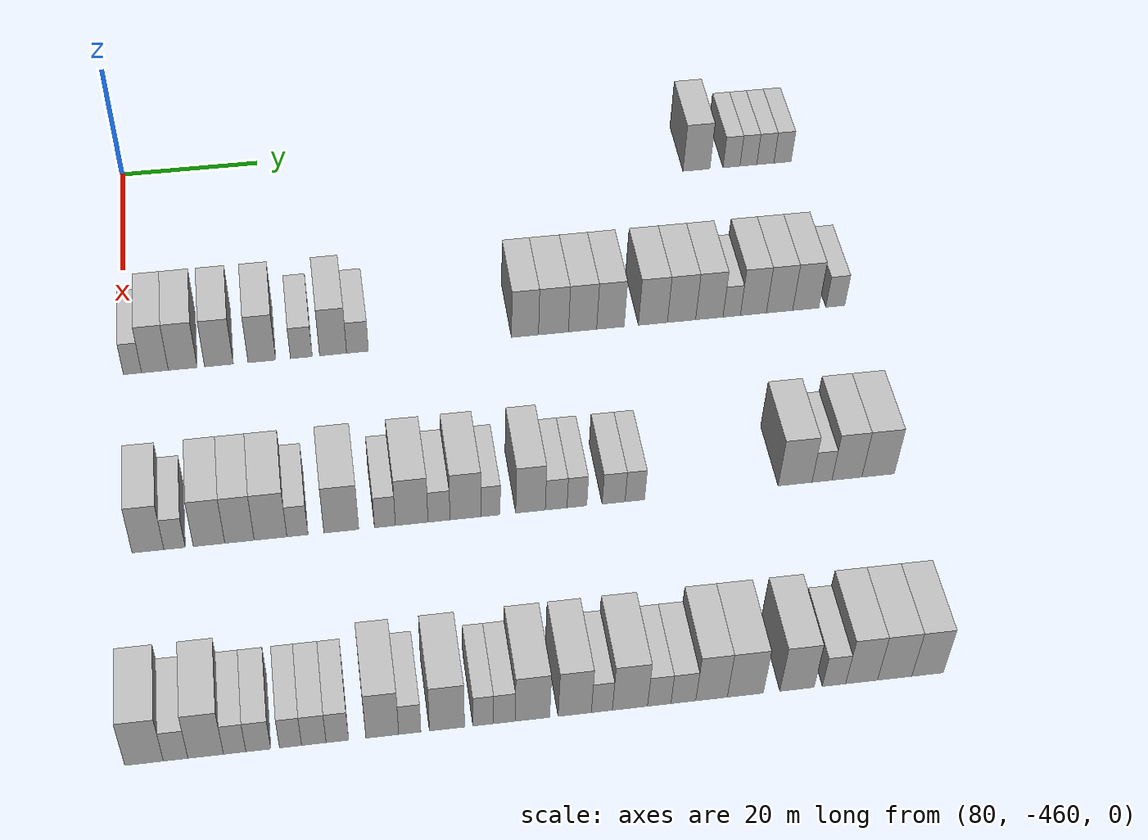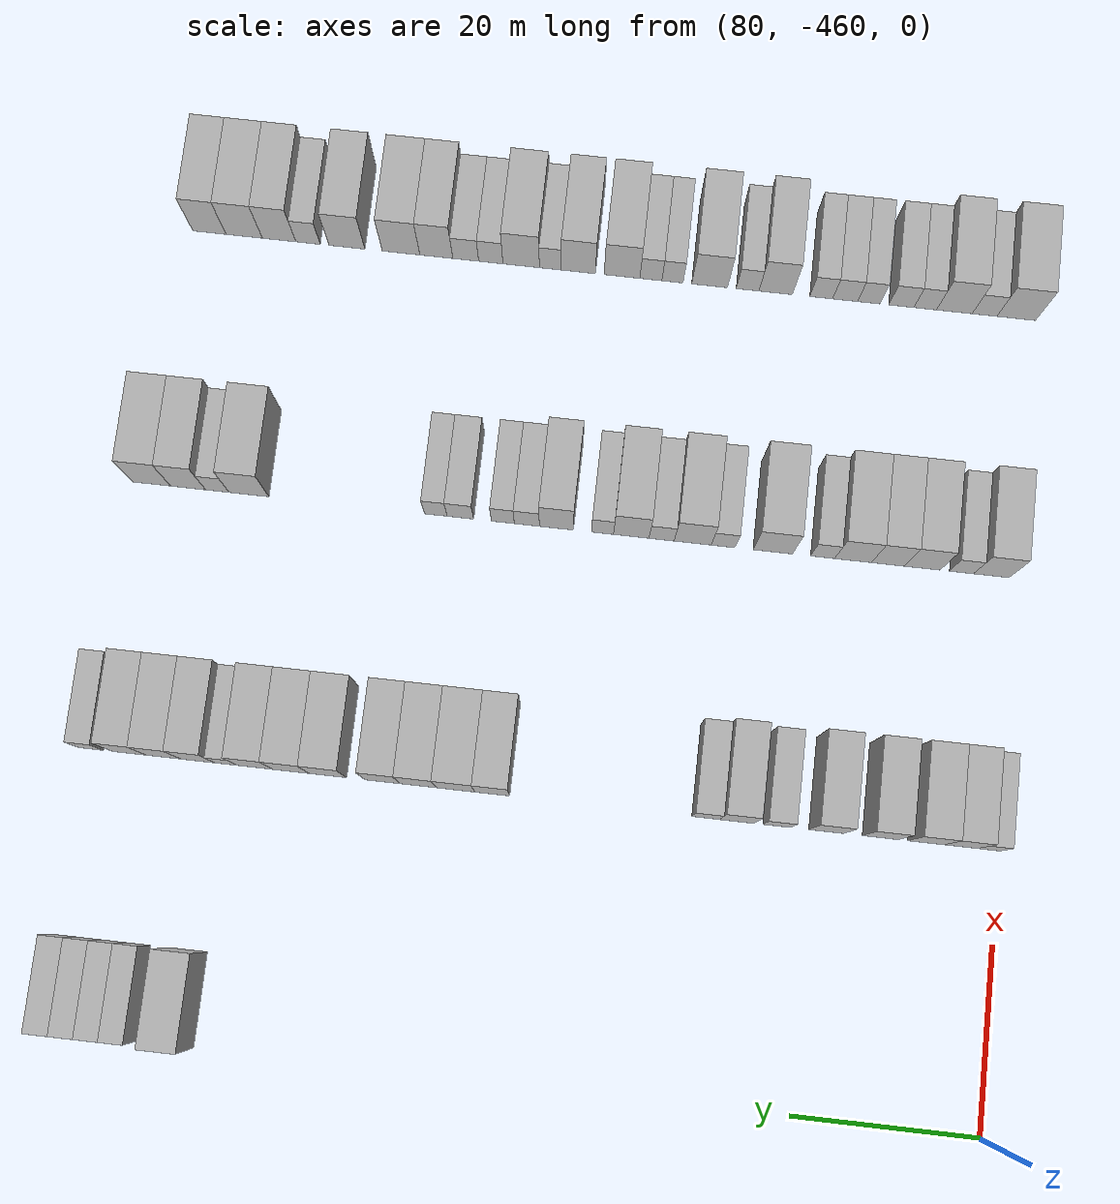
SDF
<sdf version="1.6">
 <world name="default">
  <model name="building_485">
   <static>1</static>
   <pose>85.0000 -374.9194 0 0.000000 0.000000 0.000000</pose>
   <link name="link">
    <pose>0 0 4.50 0 0 0</pose>
    <collision name="collision"><geometry><box><size>10.0000 4.1018 9.0000</size></box></geometry></collision>
    <visual name="visual">
     <cast_shadows>0</cast_shadows>
     <geometry><box><size>10.0000 4.1018 9.0000</size></box></geometry>
     <material>
      <script>
       <uri>model://HANNAS_wall/materials/scripts</uri>
       <uri>model://HANNAS_wall/materials/textures</uri>
       <name>vrc/HANNAS_wall</name>
      </script>
     </material>
    </visual>
   </link>
  </model>
  <model name="building_486">
   <static>1</static>
   <pose>85.0000 -369.5695 0 0.000000 0.000000 0.000000</pose>
   <link name="link">
    <pose>0 0 3.00 0 0 0</pose>
    <collision name="collision"><geometry><box><size>10.0000 2.5979 6.0000</size></box></geometry></collision>
    <visual name="visual">
     <cast_shadows>0</cast_shadows>
     <geometry><box><size>10.0000 2.5979 6.0000</size></box></geometry>
     <material>
      <script>
       <uri>model://HANNAS_wall/materials/scripts</uri>
       <uri>model://HANNAS_wall/materials/textures</uri>
       <name>vrc/HANNAS_wall</name>
      </script>
     </material>
    </visual>
   </link>
  </model>
  <model name="building_487">
   <static>1</static>
   <pose>85.0000 -366.9845 0 0.000000 0.000000 0.000000</pose>
   <link name="link">
    <pose>0 0 3.00 0 0 0</pose>
    <collision name="collision"><geometry><box><size>10.0000 2.5721 6.0000</size></box></geometry></collision>
    <visual name="visual">
     <cast_shadows>0</cast_shadows>
     <geometry><box><size>10.0000 2.5721 6.0000</size></box></geometry>
     <material>
      <script>
       <uri>model://HANNAS_wall/materials/scripts</uri>
       <uri>model://HANNAS_wall/materials/textures</uri>
       <name>vrc/HANNAS_wall</name>
      </script>
     </material>
    </visual>
   </link>
  </model>
  <model name="building_488">
   <static>1</static>
   <pose>85.0000 -364.3899 0 0.000000 0.000000 0.000000</pose>
   <link name="link">
    <pose>0 0 3.00 0 0 0</pose>
    <collision name="collision"><geometry><box><size>10.0000 2.6172 6.0000</size></box></geometry></collision>
    <visual name="visual">
     <cast_shadows>0</cast_shadows>
     <geometry><box><size>10.0000 2.6172 6.0000</size></box></geometry>
     <material>
      <script>
       <uri>model://HANNAS_wall/materials/scripts</uri>
       <uri>model://HANNAS_wall/materials/textures</uri>
       <name>vrc/HANNAS_wall</name>
      </script>
     </material>
    </visual>
   </link>
  </model>
  <model name="building_489">
   <static>1</static>
   <pose>85.0000 -361.7612 0 0.000000 0.000000 0.000000</pose>
   <link name="link">
    <pose>0 0 3.00 0 0 0</pose>
    <collision name="collision"><geometry><box><size>10.0000 2.6401 6.0000</size></box></geometry></collision>
    <visual name="visual">
     <cast_shadows>0</cast_shadows>
     <geometry><box><size>10.0000 2.6401 6.0000</size></box></geometry>
     <material>
      <script>
       <uri>model://HANNAS_wall/materials/scripts</uri>
       <uri>model://HANNAS_wall/materials/textures</uri>
       <name>vrc/HANNAS_wall</name>
      </script>
     </material>
    </visual>
   </link>
  </model>
  <model name="building_687">
   <static>1</static>
   <pose>115.0000 -458.7823 0 0.000000 0.000000 0.000000</pose>
   <link name="link">
    <pose>0 0 3.00 0 0 0</pose>
    <collision name="collision"><geometry><box><size>10.0000 2.4355 6.0000</size></box></geometry></collision>
    <visual name="visual">
     <cast_shadows>0</cast_shadows>
     <geometry><box><size>10.0000 2.4355 6.0000</size></box></geometry>
     <material>
      <script>
       <uri>model://HANNAS_wall/materials/scripts</uri>
       <uri>model://HANNAS_wall/materials/textures</uri>
       <name>vrc/HANNAS_wall</name>
      </script>
     </material>
    </visual>
   </link>
  </model>
  <model name="building_688">
   <static>1</static>
   <pose>115.0000 -455.7634 0 0.000000 0.000000 0.000000</pose>
   <link name="link">
    <pose>0 0 4.50 0 0 0</pose>
    <collision name="collision"><geometry><box><size>10.0000 3.6023 9.0000</size></box></geometry></collision>
    <visual name="visual">
     <cast_shadows>0</cast_shadows>
     <geometry><box><size>10.0000 3.6023 9.0000</size></box></geometry>
     <material>
      <script>
       <uri>model://HANNAS_wall/materials/scripts</uri>
       <uri>model://HANNAS_wall/materials/textures</uri>
       <name>vrc/HANNAS_wall</name>
      </script>
     </material>
    </visual>
   </link>
  </model>
  <model name="building_689">
   <static>1</static>
   <pose>115.0000 -452.0090 0 0.000000 0.000000 0.000000</pose>
   <link name="link">
    <pose>0 0 4.50 0 0 0</pose>
    <collision name="collision"><geometry><box><size>10.0000 3.9065 9.0000</size></box></geometry></collision>
    <visual name="visual">
     <cast_shadows>0</cast_shadows>
     <geometry><box><size>10.0000 3.9065 9.0000</size></box></geometry>
     <material>
      <script>
       <uri>model://HANNAS_wall/materials/scripts</uri>
       <uri>model://HANNAS_wall/materials/textures</uri>
       <name>vrc/HANNAS_wall</name>
      </script>
     </material>
    </visual>
   </link>
  </model>
  <model name="building_690">
   <static>1</static>
   <pose>115.0000 -447.1148 0 0.000000 0.000000 0.000000</pose>
   <link name="link">
    <pose>0 0 4.50 0 0 0</pose>
    <collision name="collision"><geometry><box><size>10.0000 3.8818 9.0000</size></box></geometry></collision>
    <visual name="visual">
     <cast_shadows>0</cast_shadows>
     <geometry><box><size>10.0000 3.8818 9.0000</size></box></geometry>
     <material>
      <script>
       <uri>model://HANNAS_wall/materials/scripts</uri>
       <uri>model://HANNAS_wall/materials/textures</uri>
       <name>vrc/HANNAS_wall</name>
      </script>
     </material>
    </visual>
   </link>
  </model>
  <model name="building_691">
   <static>1</static>
   <pose>115.0000 -441.2875 0 0.000000 0.000000 0.000000</pose>
   <link name="link">
    <pose>0 0 4.50 0 0 0</pose>
    <collision name="collision"><geometry><box><size>10.0000 3.7729 9.0000</size></box></geometry></collision>
    <visual name="visual">
     <cast_shadows>0</cast_shadows>
     <geometry><box><size>10.0000 3.7729 9.0000</size></box></geometry>
     <material>
      <script>
       <uri>model://HANNAS_wall/materials/scripts</uri>
       <uri>model://HANNAS_wall/materials/textures</uri>
       <name>vrc/HANNAS_wall</name>
      </script>
     </material>
    </visual>
   </link>
  </model>
  <model name="building_692">
   <static>1</static>
   <pose>115.0000 -435.9151 0 0.000000 0.000000 0.000000</pose>
   <link name="link">
    <pose>0 0 3.00 0 0 0</pose>
    <collision name="collision"><geometry><box><size>10.0000 2.9719 6.0000</size></box></geometry></collision>
    <visual name="visual">
     <cast_shadows>0</cast_shadows>
     <geometry><box><size>10.0000 2.9719 6.0000</size></box></geometry>
     <material>
      <script>
       <uri>model://HANNAS_wall/materials/scripts</uri>
       <uri>model://HANNAS_wall/materials/textures</uri>
       <name>vrc/HANNAS_wall</name>
      </script>
     </material>
    </visual>
   </link>
  </model>
  <model name="building_693">
   <static>1</static>
   <pose>115.0000 -431.5846 0 0.000000 0.000000 0.000000</pose>
   <link name="link">
    <pose>0 0 4.50 0 0 0</pose>
    <collision name="collision"><geometry><box><size>10.0000 3.6892 9.0000</size></box></geometry></collision>
    <visual name="visual">
     <cast_shadows>0</cast_shadows>
     <geometry><box><size>10.0000 3.6892 9.0000</size></box></geometry>
     <material>
      <script>
       <uri>model://HANNAS_wall/materials/scripts</uri>
       <uri>model://HANNAS_wall/materials/textures</uri>
       <name>vrc/HANNAS_wall</name>
      </script>
     </material>
    </visual>
   </link>
  </model>
  <model name="building_694">
   <static>1</static>
   <pose>115.0000 -428.2467 0 0.000000 0.000000 0.000000</pose>
   <link name="link">
    <pose>0 0 3.00 0 0 0</pose>
    <collision name="collision"><geometry><box><size>10.0000 2.9866 6.0000</size></box></geometry></collision>
    <visual name="visual">
     <cast_shadows>0</cast_shadows>
     <geometry><box><size>10.0000 2.9866 6.0000</size></box></geometry>
     <material>
      <script>
       <uri>model://HANNAS_wall/materials/scripts</uri>
       <uri>model://HANNAS_wall/materials/textures</uri>
       <name>vrc/HANNAS_wall</name>
      </script>
     </material>
    </visual>
   </link>
  </model>
  <model name="building_695">
   <static>1</static>
   <pose>115.0000 -405.1167 0 0.000000 0.000000 0.000000</pose>
   <link name="link">
    <pose>0 0 4.50 0 0 0</pose>
    <collision name="collision"><geometry><box><size>10.0000 3.7578 9.0000</size></box></geometry></collision>
    <visual name="visual">
     <cast_shadows>0</cast_shadows>
     <geometry><box><size>10.0000 3.7578 9.0000</size></box></geometry>
     <material>
      <script>
       <uri>model://HANNAS_wall/materials/scripts</uri>
       <uri>model://HANNAS_wall/materials/textures</uri>
       <name>vrc/HANNAS_wall</name>
      </script>
     </material>
    </visual>
   </link>
  </model>
  <model name="building_696">
   <static>1</static>
   <pose>115.0000 -401.1436 0 0.000000 0.000000 0.000000</pose>
   <link name="link">
    <pose>0 0 4.50 0 0 0</pose>
    <collision name="collision"><geometry><box><size>10.0000 4.1882 9.0000</size></box></geometry></collision>
    <visual name="visual">
     <cast_shadows>0</cast_shadows>
     <geometry><box><size>10.0000 4.1882 9.0000</size></box></geometry>
     <material>
      <script>
       <uri>model://HANNAS_wall/materials/scripts</uri>
       <uri>model://HANNAS_wall/materials/textures</uri>
       <name>vrc/HANNAS_wall</name>
      </script>
     </material>
    </visual>
   </link>
  </model>
  <model name="building_697">
   <static>1</static>
   <pose>115.0000 -397.0735 0 0.000000 0.000000 0.000000</pose>
   <link name="link">
    <pose>0 0 4.50 0 0 0</pose>
    <collision name="collision"><geometry><box><size>10.0000 3.9521 9.0000</size></box></geometry></collision>
    <visual name="visual">
     <cast_shadows>0</cast_shadows>
     <geometry><box><size>10.0000 3.9521 9.0000</size></box></geometry>
     <material>
      <script>
       <uri>model://HANNAS_wall/materials/scripts</uri>
       <uri>model://HANNAS_wall/materials/textures</uri>
       <name>vrc/HANNAS_wall</name>
      </script>
     </material>
    </visual>
   </link>
  </model>
  <model name="building_698">
   <static>1</static>
   <pose>115.0000 -393.1735 0 0.000000 0.000000 0.000000</pose>
   <link name="link">
    <pose>0 0 4.50 0 0 0</pose>
    <collision name="collision"><geometry><box><size>10.0000 3.8479 9.0000</size></box></geometry></collision>
    <visual name="visual">
     <cast_shadows>0</cast_shadows>
     <geometry><box><size>10.0000 3.8479 9.0000</size></box></geometry>
     <material>
      <script>
       <uri>model://HANNAS_wall/materials/scripts</uri>
       <uri>model://HANNAS_wall/materials/textures</uri>
       <name>vrc/HANNAS_wall</name>
      </script>
     </material>
    </visual>
   </link>
  </model>
  <model name="building_699">
   <static>1</static>
   <pose>115.0000 -387.2053 0 0.000000 0.000000 0.000000</pose>
   <link name="link">
    <pose>0 0 4.50 0 0 0</pose>
    <collision name="collision"><geometry><box><size>10.0000 4.0884 9.0000</size></box></geometry></collision>
    <visual name="visual">
     <cast_shadows>0</cast_shadows>
     <geometry><box><size>10.0000 4.0884 9.0000</size></box></geometry>
     <material>
      <script>
       <uri>model://HANNAS_wall/materials/scripts</uri>
       <uri>model://HANNAS_wall/materials/textures</uri>
       <name>vrc/HANNAS_wall</name>
      </script>
     </material>
    </visual>
   </link>
  </model>
  <model name="building_700">
   <static>1</static>
   <pose>115.0000 -383.1663 0 0.000000 0.000000 0.000000</pose>
   <link name="link">
    <pose>0 0 4.50 0 0 0</pose>
    <collision name="collision"><geometry><box><size>10.0000 3.9896 9.0000</size></box></geometry></collision>
    <visual name="visual">
     <cast_shadows>0</cast_shadows>
     <geometry><box><size>10.0000 3.9896 9.0000</size></box></geometry>
     <material>
      <script>
       <uri>model://HANNAS_wall/materials/scripts</uri>
       <uri>model://HANNAS_wall/materials/textures</uri>
       <name>vrc/HANNAS_wall</name>
      </script>
     </material>
    </visual>
   </link>
  </model>
  <model name="building_701">
   <static>1</static>
   <pose>115.0000 -379.2354 0 0.000000 0.000000 0.000000</pose>
   <link name="link">
    <pose>0 0 4.50 0 0 0</pose>
    <collision name="collision"><geometry><box><size>10.0000 3.8723 9.0000</size></box></geometry></collision>
    <visual name="visual">
     <cast_shadows>0</cast_shadows>
     <geometry><box><size>10.0000 3.8723 9.0000</size></box></geometry>
     <material>
      <script>
       <uri>model://HANNAS_wall/materials/scripts</uri>
       <uri>model://HANNAS_wall/materials/textures</uri>
       <name>vrc/HANNAS_wall</name>
      </script>
     </material>
    </visual>
   </link>
  </model>
  <model name="building_702">
   <static>1</static>
   <pose>115.0000 -376.0723 0 0.000000 0.000000 0.000000</pose>
   <link name="link">
    <pose>0 0 3.00 0 0 0</pose>
    <collision name="collision"><geometry><box><size>10.0000 2.4538 6.0000</size></box></geometry></collision>
    <visual name="visual">
     <cast_shadows>0</cast_shadows>
     <geometry><box><size>10.0000 2.4538 6.0000</size></box></geometry>
     <material>
      <script>
       <uri>model://HANNAS_wall/materials/scripts</uri>
       <uri>model://HANNAS_wall/materials/textures</uri>
       <name>vrc/HANNAS_wall</name>
      </script>
     </material>
    </visual>
   </link>
  </model>
  <model name="building_703">
   <static>1</static>
   <pose>115.0000 -372.9947 0 0.000000 0.000000 0.000000</pose>
   <link name="link">
    <pose>0 0 4.50 0 0 0</pose>
    <collision name="collision"><geometry><box><size>10.0000 3.7015 9.0000</size></box></geometry></collision>
    <visual name="visual">
     <cast_shadows>0</cast_shadows>
     <geometry><box><size>10.0000 3.7015 9.0000</size></box></geometry>
     <material>
      <script>
       <uri>model://HANNAS_wall/materials/scripts</uri>
       <uri>model://HANNAS_wall/materials/textures</uri>
       <name>vrc/HANNAS_wall</name>
      </script>
     </material>
    </visual>
   </link>
  </model>
  <model name="building_704">
   <static>1</static>
   <pose>115.0000 -369.2673 0 0.000000 0.000000 0.000000</pose>
   <link name="link">
    <pose>0 0 4.50 0 0 0</pose>
    <collision name="collision"><geometry><box><size>10.0000 3.7533 9.0000</size></box></geometry></collision>
    <visual name="visual">
     <cast_shadows>0</cast_shadows>
     <geometry><box><size>10.0000 3.7533 9.0000</size></box></geometry>
     <material>
      <script>
       <uri>model://HANNAS_wall/materials/scripts</uri>
       <uri>model://HANNAS_wall/materials/textures</uri>
       <name>vrc/HANNAS_wall</name>
      </script>
     </material>
    </visual>
   </link>
  </model>
  <model name="building_705">
   <static>1</static>
   <pose>115.0000 -365.5245 0 0.000000 0.000000 0.000000</pose>
   <link name="link">
    <pose>0 0 4.50 0 0 0</pose>
    <collision name="collision"><geometry><box><size>10.0000 3.7323 9.0000</size></box></geometry></collision>
    <visual name="visual">
     <cast_shadows>0</cast_shadows>
     <geometry><box><size>10.0000 3.7323 9.0000</size></box></geometry>
     <material>
      <script>
       <uri>model://HANNAS_wall/materials/scripts</uri>
       <uri>model://HANNAS_wall/materials/textures</uri>
       <name>vrc/HANNAS_wall</name>
      </script>
     </material>
    </visual>
   </link>
  </model>
  <model name="building_706">
   <static>1</static>
   <pose>115.0000 -361.3030 0 0.000000 0.000000 0.000000</pose>
   <link name="link">
    <pose>0 0 3.00 0 0 0</pose>
    <collision name="collision"><geometry><box><size>10.0000 2.7107 6.0000</size></box></geometry></collision>
    <visual name="visual">
     <cast_shadows>0</cast_shadows>
     <geometry><box><size>10.0000 2.7107 6.0000</size></box></geometry>
     <material>
      <script>
       <uri>model://HANNAS_wall/materials/scripts</uri>
       <uri>model://HANNAS_wall/materials/textures</uri>
       <name>vrc/HANNAS_wall</name>
      </script>
     </material>
    </visual>
   </link>
  </model>
  <model name="building_916">
   <static>1</static>
   <pose>145.0000 -457.0274 0 0.000000 0.000000 0.000000</pose>
   <link name="link">
    <pose>0 0 4.50 0 0 0</pose>
    <collision name="collision"><geometry><box><size>10.0000 3.9452 9.0000</size></box></geometry></collision>
    <visual name="visual">
     <cast_shadows>0</cast_shadows>
     <geometry><box><size>10.0000 3.9452 9.0000</size></box></geometry>
     <material>
      <script>
       <uri>model://HANNAS_wall/materials/scripts</uri>
       <uri>model://HANNAS_wall/materials/textures</uri>
       <name>vrc/HANNAS_wall</name>
      </script>
     </material>
    </visual>
   </link>
  </model>
  <model name="building_917">
   <static>1</static>
   <pose>145.0000 -453.7219 0 0.000000 0.000000 0.000000</pose>
   <link name="link">
    <pose>0 0 3.00 0 0 0</pose>
    <collision name="collision"><geometry><box><size>10.0000 2.6657 6.0000</size></box></geometry></collision>
    <visual name="visual">
     <cast_shadows>0</cast_shadows>
     <geometry><box><size>10.0000 2.6657 6.0000</size></box></geometry>
     <material>
      <script>
       <uri>model://HANNAS_wall/materials/scripts</uri>
       <uri>model://HANNAS_wall/materials/textures</uri>
       <name>vrc/HANNAS_wall</name>
      </script>
     </material>
    </visual>
   </link>
  </model>
  <model name="building_918">
   <static>1</static>
   <pose>145.0000 -449.4197 0 0.000000 0.000000 0.000000</pose>
   <link name="link">
    <pose>0 0 4.50 0 0 0</pose>
    <collision name="collision"><geometry><box><size>10.0000 3.9387 9.0000</size></box></geometry></collision>
    <visual name="visual">
     <cast_shadows>0</cast_shadows>
     <geometry><box><size>10.0000 3.9387 9.0000</size></box></geometry>
     <material>
      <script>
       <uri>model://HANNAS_wall/materials/scripts</uri>
       <uri>model://HANNAS_wall/materials/textures</uri>
       <name>vrc/HANNAS_wall</name>
      </script>
     </material>
    </visual>
   </link>
  </model>
  <model name="building_919">
   <static>1</static>
   <pose>145.0000 -445.6117 0 0.000000 0.000000 0.000000</pose>
   <link name="link">
    <pose>0 0 4.50 0 0 0</pose>
    <collision name="collision"><geometry><box><size>10.0000 3.6772 9.0000</size></box></geometry></collision>
    <visual name="visual">
     <cast_shadows>0</cast_shadows>
     <geometry><box><size>10.0000 3.6772 9.0000</size></box></geometry>
     <material>
      <script>
       <uri>model://HANNAS_wall/materials/scripts</uri>
       <uri>model://HANNAS_wall/materials/textures</uri>
       <name>vrc/HANNAS_wall</name>
      </script>
     </material>
    </visual>
   </link>
  </model>
  <model name="building_920">
   <static>1</static>
   <pose>145.0000 -441.7202 0 0.000000 0.000000 0.000000</pose>
   <link name="link">
    <pose>0 0 4.50 0 0 0</pose>
    <collision name="collision"><geometry><box><size>10.0000 4.1058 9.0000</size></box></geometry></collision>
    <visual name="visual">
     <cast_shadows>0</cast_shadows>
     <geometry><box><size>10.0000 4.1058 9.0000</size></box></geometry>
     <material>
      <script>
       <uri>model://HANNAS_wall/materials/scripts</uri>
       <uri>model://HANNAS_wall/materials/textures</uri>
       <name>vrc/HANNAS_wall</name>
      </script>
     </material>
    </visual>
   </link>
  </model>
  <model name="building_921">
   <static>1</static>
   <pose>145.0000 -438.3343 0 0.000000 0.000000 0.000000</pose>
   <link name="link">
    <pose>0 0 3.00 0 0 0</pose>
    <collision name="collision"><geometry><box><size>10.0000 2.6660 6.0000</size></box></geometry></collision>
    <visual name="visual">
     <cast_shadows>0</cast_shadows>
     <geometry><box><size>10.0000 2.6660 6.0000</size></box></geometry>
     <material>
      <script>
       <uri>model://HANNAS_wall/materials/scripts</uri>
       <uri>model://HANNAS_wall/materials/textures</uri>
       <name>vrc/HANNAS_wall</name>
      </script>
     </material>
    </visual>
   </link>
  </model>
  <model name="building_922">
   <static>1</static>
   <pose>145.0000 -432.8032 0 0.000000 0.000000 0.000000</pose>
   <link name="link">
    <pose>0 0 4.50 0 0 0</pose>
    <collision name="collision"><geometry><box><size>10.0000 4.3962 9.0000</size></box></geometry></collision>
    <visual name="visual">
     <cast_shadows>0</cast_shadows>
     <geometry><box><size>10.0000 4.3962 9.0000</size></box></geometry>
     <material>
      <script>
       <uri>model://HANNAS_wall/materials/scripts</uri>
       <uri>model://HANNAS_wall/materials/textures</uri>
       <name>vrc/HANNAS_wall</name>
      </script>
     </material>
    </visual>
   </link>
  </model>
  <model name="building_923">
   <static>1</static>
   <pose>145.0000 -427.2815 0 0.000000 0.000000 0.000000</pose>
   <link name="link">
    <pose>0 0 3.00 0 0 0</pose>
    <collision name="collision"><geometry><box><size>10.0000 2.6474 6.0000</size></box></geometry></collision>
    <visual name="visual">
     <cast_shadows>0</cast_shadows>
     <geometry><box><size>10.0000 2.6474 6.0000</size></box></geometry>
     <material>
      <script>
       <uri>model://HANNAS_wall/materials/scripts</uri>
       <uri>model://HANNAS_wall/materials/textures</uri>
       <name>vrc/HANNAS_wall</name>
      </script>
     </material>
    </visual>
   </link>
  </model>
  <model name="building_924">
   <static>1</static>
   <pose>145.0000 -423.8891 0 0.000000 0.000000 0.000000</pose>
   <link name="link">
    <pose>0 0 4.50 0 0 0</pose>
    <collision name="collision"><geometry><box><size>10.0000 4.1374 9.0000</size></box></geometry></collision>
    <visual name="visual">
     <cast_shadows>0</cast_shadows>
     <geometry><box><size>10.0000 4.1374 9.0000</size></box></geometry>
     <material>
      <script>
       <uri>model://HANNAS_wall/materials/scripts</uri>
       <uri>model://HANNAS_wall/materials/textures</uri>
       <name>vrc/HANNAS_wall</name>
      </script>
     </material>
    </visual>
   </link>
  </model>
  <model name="building_925">
   <static>1</static>
   <pose>145.0000 -420.4185 0 0.000000 0.000000 0.000000</pose>
   <link name="link">
    <pose>0 0 3.00 0 0 0</pose>
    <collision name="collision"><geometry><box><size>10.0000 2.8038 6.0000</size></box></geometry></collision>
    <visual name="visual">
     <cast_shadows>0</cast_shadows>
     <geometry><box><size>10.0000 2.8038 6.0000</size></box></geometry>
     <material>
      <script>
       <uri>model://HANNAS_wall/materials/scripts</uri>
       <uri>model://HANNAS_wall/materials/textures</uri>
       <name>vrc/HANNAS_wall</name>
      </script>
     </material>
    </visual>
   </link>
  </model>
  <model name="building_926">
   <static>1</static>
   <pose>145.0000 -417.0370 0 0.000000 0.000000 0.000000</pose>
   <link name="link">
    <pose>0 0 4.50 0 0 0</pose>
    <collision name="collision"><geometry><box><size>10.0000 3.9593 9.0000</size></box></geometry></collision>
    <visual name="visual">
     <cast_shadows>0</cast_shadows>
     <geometry><box><size>10.0000 3.9593 9.0000</size></box></geometry>
     <material>
      <script>
       <uri>model://HANNAS_wall/materials/scripts</uri>
       <uri>model://HANNAS_wall/materials/textures</uri>
       <name>vrc/HANNAS_wall</name>
      </script>
     </material>
    </visual>
   </link>
  </model>
  <model name="building_927">
   <static>1</static>
   <pose>145.0000 -413.8283 0 0.000000 0.000000 0.000000</pose>
   <link name="link">
    <pose>0 0 3.00 0 0 0</pose>
    <collision name="collision"><geometry><box><size>10.0000 2.4580 6.0000</size></box></geometry></collision>
    <visual name="visual">
     <cast_shadows>0</cast_shadows>
     <geometry><box><size>10.0000 2.4580 6.0000</size></box></geometry>
     <material>
      <script>
       <uri>model://HANNAS_wall/materials/scripts</uri>
       <uri>model://HANNAS_wall/materials/textures</uri>
       <name>vrc/HANNAS_wall</name>
      </script>
     </material>
    </visual>
   </link>
  </model>
  <model name="building_928">
   <static>1</static>
   <pose>145.0000 -408.7014 0 0.000000 0.000000 0.000000</pose>
   <link name="link">
    <pose>0 0 4.50 0 0 0</pose>
    <collision name="collision"><geometry><box><size>10.0000 3.7958 9.0000</size></box></geometry></collision>
    <visual name="visual">
     <cast_shadows>0</cast_shadows>
     <geometry><box><size>10.0000 3.7958 9.0000</size></box></geometry>
     <material>
      <script>
       <uri>model://HANNAS_wall/materials/scripts</uri>
       <uri>model://HANNAS_wall/materials/textures</uri>
       <name>vrc/HANNAS_wall</name>
      </script>
     </material>
    </visual>
   </link>
  </model>
  <model name="building_929">
   <static>1</static>
   <pose>145.0000 -405.4028 0 0.000000 0.000000 0.000000</pose>
   <link name="link">
    <pose>0 0 3.00 0 0 0</pose>
    <collision name="collision"><geometry><box><size>10.0000 2.8015 6.0000</size></box></geometry></collision>
    <visual name="visual">
     <cast_shadows>0</cast_shadows>
     <geometry><box><size>10.0000 2.8015 6.0000</size></box></geometry>
     <material>
      <script>
       <uri>model://HANNAS_wall/materials/scripts</uri>
       <uri>model://HANNAS_wall/materials/textures</uri>
       <name>vrc/HANNAS_wall</name>
      </script>
     </material>
    </visual>
   </link>
  </model>
  <model name="building_930">
   <static>1</static>
   <pose>145.0000 -402.7312 0 0.000000 0.000000 0.000000</pose>
   <link name="link">
    <pose>0 0 3.00 0 0 0</pose>
    <collision name="collision"><geometry><box><size>10.0000 2.5416 6.0000</size></box></geometry></collision>
    <visual name="visual">
     <cast_shadows>0</cast_shadows>
     <geometry><box><size>10.0000 2.5416 6.0000</size></box></geometry>
     <material>
      <script>
       <uri>model://HANNAS_wall/materials/scripts</uri>
       <uri>model://HANNAS_wall/materials/textures</uri>
       <name>vrc/HANNAS_wall</name>
      </script>
     </material>
    </visual>
   </link>
  </model>
  <model name="building_931">
   <static>1</static>
   <pose>145.0000 -397.9787 0 0.000000 0.000000 0.000000</pose>
   <link name="link">
    <pose>0 0 3.00 0 0 0</pose>
    <collision name="collision"><geometry><box><size>10.0000 2.9635 6.0000</size></box></geometry></collision>
    <visual name="visual">
     <cast_shadows>0</cast_shadows>
     <geometry><box><size>10.0000 2.9635 6.0000</size></box></geometry>
     <material>
      <script>
       <uri>model://HANNAS_wall/materials/scripts</uri>
       <uri>model://HANNAS_wall/materials/textures</uri>
       <name>vrc/HANNAS_wall</name>
      </script>
     </material>
    </visual>
   </link>
  </model>
  <model name="building_932">
   <static>1</static>
   <pose>145.0000 -395.2371 0 0.000000 0.000000 0.000000</pose>
   <link name="link">
    <pose>0 0 3.00 0 0 0</pose>
    <collision name="collision"><geometry><box><size>10.0000 2.5196 6.0000</size></box></geometry></collision>
    <visual name="visual">
     <cast_shadows>0</cast_shadows>
     <geometry><box><size>10.0000 2.5196 6.0000</size></box></geometry>
     <material>
      <script>
       <uri>model://HANNAS_wall/materials/scripts</uri>
       <uri>model://HANNAS_wall/materials/textures</uri>
       <name>vrc/HANNAS_wall</name>
      </script>
     </material>
    </visual>
   </link>
  </model>
  <model name="building_933">
   <static>1</static>
   <pose>145.0000 -374.2757 0 0.000000 0.000000 0.000000</pose>
   <link name="link">
    <pose>0 0 4.50 0 0 0</pose>
    <collision name="collision"><geometry><box><size>10.0000 4.4677 9.0000</size></box></geometry></collision>
    <visual name="visual">
     <cast_shadows>0</cast_shadows>
     <geometry><box><size>10.0000 4.4677 9.0000</size></box></geometry>
     <material>
      <script>
       <uri>model://HANNAS_wall/materials/scripts</uri>
       <uri>model://HANNAS_wall/materials/textures</uri>
       <name>vrc/HANNAS_wall</name>
      </script>
     </material>
    </visual>
   </link>
  </model>
  <model name="building_934">
   <static>1</static>
   <pose>145.0000 -370.7245 0 0.000000 0.000000 0.000000</pose>
   <link name="link">
    <pose>0 0 3.00 0 0 0</pose>
    <collision name="collision"><geometry><box><size>10.0000 2.6347 6.0000</size></box></geometry></collision>
    <visual name="visual">
     <cast_shadows>0</cast_shadows>
     <geometry><box><size>10.0000 2.6347 6.0000</size></box></geometry>
     <material>
      <script>
       <uri>model://HANNAS_wall/materials/scripts</uri>
       <uri>model://HANNAS_wall/materials/textures</uri>
       <name>vrc/HANNAS_wall</name>
      </script>
     </material>
    </visual>
   </link>
  </model>
  <model name="building_935">
   <static>1</static>
   <pose>145.0000 -367.4300 0 0.000000 0.000000 0.000000</pose>
   <link name="link">
    <pose>0 0 4.50 0 0 0</pose>
    <collision name="collision"><geometry><box><size>10.0000 3.9543 9.0000</size></box></geometry></collision>
    <visual name="visual">
     <cast_shadows>0</cast_shadows>
     <geometry><box><size>10.0000 3.9543 9.0000</size></box></geometry>
     <material>
      <script>
       <uri>model://HANNAS_wall/materials/scripts</uri>
       <uri>model://HANNAS_wall/materials/textures</uri>
       <name>vrc/HANNAS_wall</name>
      </script>
     </material>
    </visual>
   </link>
  </model>
  <model name="building_936">
   <static>1</static>
   <pose>145.0000 -363.3007 0 0.000000 0.000000 0.000000</pose>
   <link name="link">
    <pose>0 0 4.50 0 0 0</pose>
    <collision name="collision"><geometry><box><size>10.0000 4.3043 9.0000</size></box></geometry></collision>
    <visual name="visual">
     <cast_shadows>0</cast_shadows>
     <geometry><box><size>10.0000 4.3043 9.0000</size></box></geometry>
     <material>
      <script>
       <uri>model://HANNAS_wall/materials/scripts</uri>
       <uri>model://HANNAS_wall/materials/textures</uri>
       <name>vrc/HANNAS_wall</name>
      </script>
     </material>
    </visual>
   </link>
  </model>
  <model name="building_1136">
   <static>1</static>
   <pose>175.0000 -457.8012 0 0.000000 0.000000 0.000000</pose>
   <link name="link">
    <pose>0 0 4.50 0 0 0</pose>
    <collision name="collision"><geometry><box><size>10.0000 4.3976 9.0000</size></box></geometry></collision>
    <visual name="visual">
     <cast_shadows>0</cast_shadows>
     <geometry><box><size>10.0000 4.3976 9.0000</size></box></geometry>
     <material>
      <script>
       <uri>model://HANNAS_wall/materials/scripts</uri>
       <uri>model://HANNAS_wall/materials/textures</uri>
       <name>vrc/HANNAS_wall</name>
      </script>
     </material>
    </visual>
   </link>
  </model>
  <model name="building_1137">
   <static>1</static>
   <pose>175.0000 -454.1986 0 0.000000 0.000000 0.000000</pose>
   <link name="link">
    <pose>0 0 3.00 0 0 0</pose>
    <collision name="collision"><geometry><box><size>10.0000 2.8076 6.0000</size></box></geometry></collision>
    <visual name="visual">
     <cast_shadows>0</cast_shadows>
     <geometry><box><size>10.0000 2.8076 6.0000</size></box></geometry>
     <material>
      <script>
       <uri>model://HANNAS_wall/materials/scripts</uri>
       <uri>model://HANNAS_wall/materials/textures</uri>
       <name>vrc/HANNAS_wall</name>
      </script>
     </material>
    </visual>
   </link>
  </model>
  <model name="building_1138">
   <static>1</static>
   <pose>175.0000 -450.7620 0 0.000000 0.000000 0.000000</pose>
   <link name="link">
    <pose>0 0 4.50 0 0 0</pose>
    <collision name="collision"><geometry><box><size>10.0000 4.0655 9.0000</size></box></geometry></collision>
    <visual name="visual">
     <cast_shadows>0</cast_shadows>
     <geometry><box><size>10.0000 4.0655 9.0000</size></box></geometry>
     <material>
      <script>
       <uri>model://HANNAS_wall/materials/scripts</uri>
       <uri>model://HANNAS_wall/materials/textures</uri>
       <name>vrc/HANNAS_wall</name>
      </script>
     </material>
    </visual>
   </link>
  </model>
  <model name="building_1139">
   <static>1</static>
   <pose>175.0000 -447.4435 0 0.000000 0.000000 0.000000</pose>
   <link name="link">
    <pose>0 0 3.00 0 0 0</pose>
    <collision name="collision"><geometry><box><size>10.0000 2.5715 6.0000</size></box></geometry></collision>
    <visual name="visual">
     <cast_shadows>0</cast_shadows>
     <geometry><box><size>10.0000 2.5715 6.0000</size></box></geometry>
     <material>
      <script>
       <uri>model://HANNAS_wall/materials/scripts</uri>
       <uri>model://HANNAS_wall/materials/textures</uri>
       <name>vrc/HANNAS_wall</name>
      </script>
     </material>
    </visual>
   </link>
  </model>
  <model name="building_1140">
   <static>1</static>
   <pose>175.0000 -444.7239 0 0.000000 0.000000 0.000000</pose>
   <link name="link">
    <pose>0 0 3.00 0 0 0</pose>
    <collision name="collision"><geometry><box><size>10.0000 2.8677 6.0000</size></box></geometry></collision>
    <visual name="visual">
     <cast_shadows>0</cast_shadows>
     <geometry><box><size>10.0000 2.8677 6.0000</size></box></geometry>
     <material>
      <script>
       <uri>model://HANNAS_wall/materials/scripts</uri>
       <uri>model://HANNAS_wall/materials/textures</uri>
       <name>vrc/HANNAS_wall</name>
      </script>
     </material>
    </visual>
   </link>
  </model>
  <model name="building_1141">
   <static>1</static>
   <pose>175.0000 -441.0160 0 0.000000 0.000000 0.000000</pose>
   <link name="link">
    <pose>0 0 3.00 0 0 0</pose>
    <collision name="collision"><geometry><box><size>10.0000 2.5481 6.0000</size></box></geometry></collision>
    <visual name="visual">
     <cast_shadows>0</cast_shadows>
     <geometry><box><size>10.0000 2.5481 6.0000</size></box></geometry>
     <material>
      <script>
       <uri>model://HANNAS_wall/materials/scripts</uri>
       <uri>model://HANNAS_wall/materials/textures</uri>
       <name>vrc/HANNAS_wall</name>
      </script>
     </material>
    </visual>
   </link>
  </model>
  <model name="building_1142">
   <static>1</static>
   <pose>175.0000 -438.3216 0 0.000000 0.000000 0.000000</pose>
   <link name="link">
    <pose>0 0 3.00 0 0 0</pose>
    <collision name="collision"><geometry><box><size>10.0000 2.8406 6.0000</size></box></geometry></collision>
    <visual name="visual">
     <cast_shadows>0</cast_shadows>
     <geometry><box><size>10.0000 2.8406 6.0000</size></box></geometry>
     <material>
      <script>
       <uri>model://HANNAS_wall/materials/scripts</uri>
       <uri>model://HANNAS_wall/materials/textures</uri>
       <name>vrc/HANNAS_wall</name>
      </script>
     </material>
    </visual>
   </link>
  </model>
  <model name="building_1143">
   <static>1</static>
   <pose>175.0000 -435.6014 0 0.000000 0.000000 0.000000</pose>
   <link name="link">
    <pose>0 0 3.00 0 0 0</pose>
    <collision name="collision"><geometry><box><size>10.0000 2.5999 6.0000</size></box></geometry></collision>
    <visual name="visual">
     <cast_shadows>0</cast_shadows>
     <geometry><box><size>10.0000 2.5999 6.0000</size></box></geometry>
     <material>
      <script>
       <uri>model://HANNAS_wall/materials/scripts</uri>
       <uri>model://HANNAS_wall/materials/textures</uri>
       <name>vrc/HANNAS_wall</name>
      </script>
     </material>
    </visual>
   </link>
  </model>
  <model name="building_1144">
   <static>1</static>
   <pose>175.0000 -430.3945 0 0.000000 0.000000 0.000000</pose>
   <link name="link">
    <pose>0 0 4.50 0 0 0</pose>
    <collision name="collision"><geometry><box><size>10.0000 3.8139 9.0000</size></box></geometry></collision>
    <visual name="visual">
     <cast_shadows>0</cast_shadows>
     <geometry><box><size>10.0000 3.8139 9.0000</size></box></geometry>
     <material>
      <script>
       <uri>model://HANNAS_wall/materials/scripts</uri>
       <uri>model://HANNAS_wall/materials/textures</uri>
       <name>vrc/HANNAS_wall</name>
      </script>
     </material>
    </visual>
   </link>
  </model>
  <model name="building_1145">
   <static>1</static>
   <pose>175.0000 -427.1960 0 0.000000 0.000000 0.000000</pose>
   <link name="link">
    <pose>0 0 3.00 0 0 0</pose>
    <collision name="collision"><geometry><box><size>10.0000 2.5832 6.0000</size></box></geometry></collision>
    <visual name="visual">
     <cast_shadows>0</cast_shadows>
     <geometry><box><size>10.0000 2.5832 6.0000</size></box></geometry>
     <material>
      <script>
       <uri>model://HANNAS_wall/materials/scripts</uri>
       <uri>model://HANNAS_wall/materials/textures</uri>
       <name>vrc/HANNAS_wall</name>
      </script>
     </material>
    </visual>
   </link>
  </model>
  <model name="building_1146">
   <static>1</static>
   <pose>175.0000 -422.8595 0 0.000000 0.000000 0.000000</pose>
   <link name="link">
    <pose>0 0 4.50 0 0 0</pose>
    <collision name="collision"><geometry><box><size>10.0000 4.0898 9.0000</size></box></geometry></collision>
    <visual name="visual">
     <cast_shadows>0</cast_shadows>
     <geometry><box><size>10.0000 4.0898 9.0000</size></box></geometry>
     <material>
      <script>
       <uri>model://HANNAS_wall/materials/scripts</uri>
       <uri>model://HANNAS_wall/materials/textures</uri>
       <name>vrc/HANNAS_wall</name>
      </script>
     </material>
    </visual>
   </link>
  </model>
  <model name="building_1147">
   <static>1</static>
   <pose>175.0000 -418.6079 0 0.000000 0.000000 0.000000</pose>
   <link name="link">
    <pose>0 0 3.00 0 0 0</pose>
    <collision name="collision"><geometry><box><size>10.0000 2.4135 6.0000</size></box></geometry></collision>
    <visual name="visual">
     <cast_shadows>0</cast_shadows>
     <geometry><box><size>10.0000 2.4135 6.0000</size></box></geometry>
     <material>
      <script>
       <uri>model://HANNAS_wall/materials/scripts</uri>
       <uri>model://HANNAS_wall/materials/textures</uri>
       <name>vrc/HANNAS_wall</name>
      </script>
     </material>
    </visual>
   </link>
  </model>
  <model name="building_1148">
   <static>1</static>
   <pose>175.0000 -416.1378 0 0.000000 0.000000 0.000000</pose>
   <link name="link">
    <pose>0 0 3.00 0 0 0</pose>
    <collision name="collision"><geometry><box><size>10.0000 2.5269 6.0000</size></box></geometry></collision>
    <visual name="visual">
     <cast_shadows>0</cast_shadows>
     <geometry><box><size>10.0000 2.5269 6.0000</size></box></geometry>
     <material>
      <script>
       <uri>model://HANNAS_wall/materials/scripts</uri>
       <uri>model://HANNAS_wall/materials/textures</uri>
       <name>vrc/HANNAS_wall</name>
      </script>
     </material>
    </visual>
   </link>
  </model>
  <model name="building_1149">
   <static>1</static>
   <pose>175.0000 -412.8360 0 0.000000 0.000000 0.000000</pose>
   <link name="link">
    <pose>0 0 4.50 0 0 0</pose>
    <collision name="collision"><geometry><box><size>10.0000 4.0766 9.0000</size></box></geometry></collision>
    <visual name="visual">
     <cast_shadows>0</cast_shadows>
     <geometry><box><size>10.0000 4.0766 9.0000</size></box></geometry>
     <material>
      <script>
       <uri>model://HANNAS_wall/materials/scripts</uri>
       <uri>model://HANNAS_wall/materials/textures</uri>
       <name>vrc/HANNAS_wall</name>
      </script>
     </material>
    </visual>
   </link>
  </model>
  <model name="building_1150">
   <static>1</static>
   <pose>175.0000 -407.8327 0 0.000000 0.000000 0.000000</pose>
   <link name="link">
    <pose>0 0 4.50 0 0 0</pose>
    <collision name="collision"><geometry><box><size>10.0000 3.9301 9.0000</size></box></geometry></collision>
    <visual name="visual">
     <cast_shadows>0</cast_shadows>
     <geometry><box><size>10.0000 3.9301 9.0000</size></box></geometry>
     <material>
      <script>
       <uri>model://HANNAS_wall/materials/scripts</uri>
       <uri>model://HANNAS_wall/materials/textures</uri>
       <name>vrc/HANNAS_wall</name>
      </script>
     </material>
    </visual>
   </link>
  </model>
  <model name="building_1151">
   <static>1</static>
   <pose>175.0000 -404.6234 0 0.000000 0.000000 0.000000</pose>
   <link name="link">
    <pose>0 0 3.00 0 0 0</pose>
    <collision name="collision"><geometry><box><size>10.0000 2.4885 6.0000</size></box></geometry></collision>
    <visual name="visual">
     <cast_shadows>0</cast_shadows>
     <geometry><box><size>10.0000 2.4885 6.0000</size></box></geometry>
     <material>
      <script>
       <uri>model://HANNAS_wall/materials/scripts</uri>
       <uri>model://HANNAS_wall/materials/textures</uri>
       <name>vrc/HANNAS_wall</name>
      </script>
     </material>
    </visual>
   </link>
  </model>
  <model name="building_1152">
   <static>1</static>
   <pose>175.0000 -401.2884 0 0.000000 0.000000 0.000000</pose>
   <link name="link">
    <pose>0 0 4.50 0 0 0</pose>
    <collision name="collision"><geometry><box><size>10.0000 4.1816 9.0000</size></box></geometry></collision>
    <visual name="visual">
     <cast_shadows>0</cast_shadows>
     <geometry><box><size>10.0000 4.1816 9.0000</size></box></geometry>
     <material>
      <script>
       <uri>model://HANNAS_wall/materials/scripts</uri>
       <uri>model://HANNAS_wall/materials/textures</uri>
       <name>vrc/HANNAS_wall</name>
      </script>
     </material>
    </visual>
   </link>
  </model>
  <model name="building_1153">
   <static>1</static>
   <pose>175.0000 -397.8052 0 0.000000 0.000000 0.000000</pose>
   <link name="link">
    <pose>0 0 3.00 0 0 0</pose>
    <collision name="collision"><geometry><box><size>10.0000 2.7847 6.0000</size></box></geometry></collision>
    <visual name="visual">
     <cast_shadows>0</cast_shadows>
     <geometry><box><size>10.0000 2.7847 6.0000</size></box></geometry>
     <material>
      <script>
       <uri>model://HANNAS_wall/materials/scripts</uri>
       <uri>model://HANNAS_wall/materials/textures</uri>
       <name>vrc/HANNAS_wall</name>
      </script>
     </material>
    </visual>
   </link>
  </model>
  <model name="building_1154">
   <static>1</static>
   <pose>175.0000 -394.9257 0 0.000000 0.000000 0.000000</pose>
   <link name="link">
    <pose>0 0 3.00 0 0 0</pose>
    <collision name="collision"><geometry><box><size>10.0000 2.9743 6.0000</size></box></geometry></collision>
    <visual name="visual">
     <cast_shadows>0</cast_shadows>
     <geometry><box><size>10.0000 2.9743 6.0000</size></box></geometry>
     <material>
      <script>
       <uri>model://HANNAS_wall/materials/scripts</uri>
       <uri>model://HANNAS_wall/materials/textures</uri>
       <name>vrc/HANNAS_wall</name>
      </script>
     </material>
    </visual>
   </link>
  </model>
  <model name="building_1155">
   <static>1</static>
   <pose>175.0000 -391.5480 0 0.000000 0.000000 0.000000</pose>
   <link name="link">
    <pose>0 0 4.50 0 0 0</pose>
    <collision name="collision"><geometry><box><size>10.0000 3.7810 9.0000</size></box></geometry></collision>
    <visual name="visual">
     <cast_shadows>0</cast_shadows>
     <geometry><box><size>10.0000 3.7810 9.0000</size></box></geometry>
     <material>
      <script>
       <uri>model://HANNAS_wall/materials/scripts</uri>
       <uri>model://HANNAS_wall/materials/textures</uri>
       <name>vrc/HANNAS_wall</name>
      </script>
     </material>
    </visual>
   </link>
  </model>
  <model name="building_1156">
   <static>1</static>
   <pose>175.0000 -387.4984 0 0.000000 0.000000 0.000000</pose>
   <link name="link">
    <pose>0 0 4.50 0 0 0</pose>
    <collision name="collision"><geometry><box><size>10.0000 4.3183 9.0000</size></box></geometry></collision>
    <visual name="visual">
     <cast_shadows>0</cast_shadows>
     <geometry><box><size>10.0000 4.3183 9.0000</size></box></geometry>
     <material>
      <script>
       <uri>model://HANNAS_wall/materials/scripts</uri>
       <uri>model://HANNAS_wall/materials/textures</uri>
       <name>vrc/HANNAS_wall</name>
      </script>
     </material>
    </visual>
   </link>
  </model>
  <model name="building_1157">
   <static>1</static>
   <pose>175.0000 -381.2690 0 0.000000 0.000000 0.000000</pose>
   <link name="link">
    <pose>0 0 4.50 0 0 0</pose>
    <collision name="collision"><geometry><box><size>10.0000 4.1405 9.0000</size></box></geometry></collision>
    <visual name="visual">
     <cast_shadows>0</cast_shadows>
     <geometry><box><size>10.0000 4.1405 9.0000</size></box></geometry>
     <material>
      <script>
       <uri>model://HANNAS_wall/materials/scripts</uri>
       <uri>model://HANNAS_wall/materials/textures</uri>
       <name>vrc/HANNAS_wall</name>
      </script>
     </material>
    </visual>
   </link>
  </model>
  <model name="building_1158">
   <static>1</static>
   <pose>175.0000 -376.7898 0 0.000000 0.000000 0.000000</pose>
   <link name="link">
    <pose>0 0 3.00 0 0 0</pose>
    <collision name="collision"><geometry><box><size>10.0000 2.8179 6.0000</size></box></geometry></collision>
    <visual name="visual">
     <cast_shadows>0</cast_shadows>
     <geometry><box><size>10.0000 2.8179 6.0000</size></box></geometry>
     <material>
      <script>
       <uri>model://HANNAS_wall/materials/scripts</uri>
       <uri>model://HANNAS_wall/materials/textures</uri>
       <name>vrc/HANNAS_wall</name>
      </script>
     </material>
    </visual>
   </link>
  </model>
  <model name="building_1159">
   <static>1</static>
   <pose>175.0000 -373.4477 0 0.000000 0.000000 0.000000</pose>
   <link name="link">
    <pose>0 0 4.50 0 0 0</pose>
    <collision name="collision"><geometry><box><size>10.0000 3.8663 9.0000</size></box></geometry></collision>
    <visual name="visual">
     <cast_shadows>0</cast_shadows>
     <geometry><box><size>10.0000 3.8663 9.0000</size></box></geometry>
     <material>
      <script>
       <uri>model://HANNAS_wall/materials/scripts</uri>
       <uri>model://HANNAS_wall/materials/textures</uri>
       <name>vrc/HANNAS_wall</name>
      </script>
     </material>
    </visual>
   </link>
  </model>
  <model name="building_1160">
   <static>1</static>
   <pose>175.0000 -369.4257 0 0.000000 0.000000 0.000000</pose>
   <link name="link">
    <pose>0 0 4.50 0 0 0</pose>
    <collision name="collision"><geometry><box><size>10.0000 4.1777 9.0000</size></box></geometry></collision>
    <visual name="visual">
     <cast_shadows>0</cast_shadows>
     <geometry><box><size>10.0000 4.1777 9.0000</size></box></geometry>
     <material>
      <script>
       <uri>model://HANNAS_wall/materials/scripts</uri>
       <uri>model://HANNAS_wall/materials/textures</uri>
       <name>vrc/HANNAS_wall</name>
      </script>
     </material>
    </visual>
   </link>
  </model>
  <model name="building_1161">
   <static>1</static>
   <pose>175.0000 -365.4158 0 0.000000 0.000000 0.000000</pose>
   <link name="link">
    <pose>0 0 4.50 0 0 0</pose>
    <collision name="collision"><geometry><box><size>10.0000 3.8420 9.0000</size></box></geometry></collision>
    <visual name="visual">
     <cast_shadows>0</cast_shadows>
     <geometry><box><size>10.0000 3.8420 9.0000</size></box></geometry>
     <material>
      <script>
       <uri>model://HANNAS_wall/materials/scripts</uri>
       <uri>model://HANNAS_wall/materials/textures</uri>
       <name>vrc/HANNAS_wall</name>
      </script>
     </material>
    </visual>
   </link>
  </model>
 </world>
</sdf>
